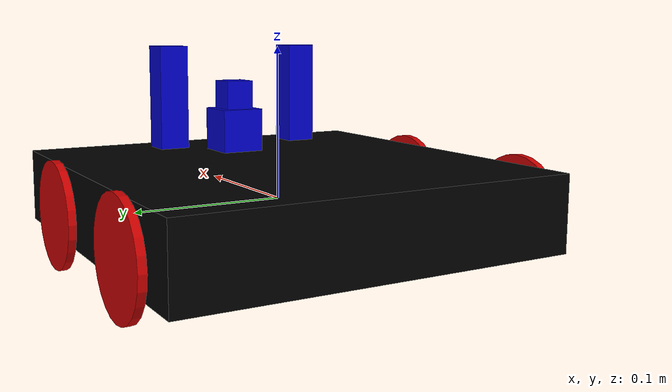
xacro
<?xml version="1.0"?>
<robot xmlns:xacro="http://www.ros.org/wiki/xacro" name="mobile_robot">

  <xacro:property name="base_width" value="0.26"/>
  <xacro:property name="base_len" value="0.26"/>
  <xacro:property name="wheel_radius" value="0.035"/>
  <xacro:property name="base_wheel_gap" value="0.007"/>
  <xacro:property name="wheel_separation" value="0.15"/>
  <xacro:property name="wheel_joint_offset" value="0.04"/>
  <xacro:property name="wheel_joint_offset1" value="-0.08"/>

  <xacro:property name="caster_wheel_radius" value="${wheel_radius/2}"/>
  <xacro:property name="caster_wheel_mass" value="0.001"/>
  <xacro:property name="caster_wheel_joint_offset" value="-0.052"/>

  <xacro:property name="camera_size" value="0.02"/>
  <xacro:property name="camera_origin_x" value="0.065"/>
  <xacro:property name="camera_origin_y" value="0"/>
  <xacro:property name="camera_origin_z" value="0.065"/>

  <!--Color Properties-->
  <material name="blue">
    <color rgba="0 0 0.8 1"/>
  </material>
  <material name="black">
    <color rgba="0 0 0 1"/>
  </material>
  <material name="white">
    <color rgba="1 1 1 1"/>
  </material>
  <material name="red">
    <color rgba="0.8 0.0 0.0 1.0"/>
  </material>

  <!--Interial macros-->
  <xacro:macro name="cylinder_inertia" params="m r h">
    <inertial>
      <mass value="${m}"/>
      <inertia ixx="${m*(3*r*r+h*h)/12}" ixy = "0" ixz = "0" iyy="${m*(3*r*r+h*h)/12}" iyz = "0" izz="${m*r*r/2}"/>
    </inertial>
  </xacro:macro>

  <xacro:macro name="box_inertia" params="m w h d">
    <inertial>
      <mass value="${m}"/>
      <inertia ixx="${m / 12.0 * (d*d + h*h)}" ixy="0.0" ixz="0.0" iyy="${m / 12.0 * (w*w + h*h)}" iyz="0.0" izz="${m / 12.0 * (w*w + d*d)}"/>
    </inertial>
  </xacro:macro>

  <xacro:macro name="sphere_inertia" params="m r">
    <inertial>
      <mass value="${m}"/>
      <inertia ixx="${2.0*m*(r*r)/5.0}" ixy="0.0" ixz="0.0" iyy="${2.0*m*(r*r)/5.0}" iyz="0.0" izz="${2.0*m*(r*r)/5.0}"/>
    </inertial>
  </xacro:macro>

  <xacro:macro name="default_inertial" params="mass">
    <inertial>
      <mass value="${mass}"/>
      <inertia ixx="1.0" ixy="0.0" ixz="0.0" iyy="1.0" iyz="0.0" izz="1.0"/>
    </inertial>
  </xacro:macro>
  <!--Base Footprint-->

  <!--Base link-->
  <link name="base_link">
    <xacro:box_inertia m="10" w="${base_len}" h="${base_width}" d="0.01"/>
    <visual>
      <geometry>
        <box size="${base_len} ${base_width} 0.05"/>
      </geometry>
      <material name="black"/>
    </visual>
    <collision>
      <geometry>
        <box size="${base_len} ${base_width} 0.01"/>
      </geometry>
    </collision>
  </link>

  <!--base_link to base_footprint Joint-->

  <!--Wheel link1 & joint macro-->
  <xacro:macro name="wheel" params="prefix reflect">
    <link name="${prefix}_wheel">
      <visual>
        <origin xyz="0.0 0 0" rpy="${pi/2} 0 0"/>
        <geometry>
          <cylinder radius="${wheel_radius}" length="0.005"/>
        </geometry>
        <material name="red"/>
      </visual>
      <collision>
        <origin xyz="0 0 0" rpy="${pi/2} 0 0"/>
        <geometry>
          <cylinder radius="${wheel_radius}" length="0.005"/>
        </geometry>
      </collision>
      <xacro:cylinder_inertia m="10" r="${wheel_radius}" h="0.005"/>
    </link>

    <joint name="${prefix}_wheel_joint" type="continuous">
      <axis xyz="0 1 0" rpy="0 0 0" />
      <parent link="base_link"/>
      <child link="${prefix}_wheel"/>
      <origin xyz="${wheel_joint_offset} ${((base_width/2)+base_wheel_gap)*reflect} -0.005" rpy="0 0 0"/>
    </joint>
  </xacro:macro>

  <!--Wheel link2 & joint macro-->
  <xacro:macro name="wheel1" params="prefix reflect">
    <link name="${prefix}_wheel">
      <visual>
        <origin xyz="0 0 0" rpy="${pi/2} 0 0"/>
        <geometry>
          <cylinder radius="${wheel_radius}" length="0.005"/>
        </geometry>
        <material name="red"/>
      </visual>
      <collision>
        <origin xyz="0 0 0" rpy="${pi/2} 0 0"/>
        <geometry>
          <cylinder radius="${wheel_radius}" length="0.005"/>
        </geometry>
      </collision>
      <xacro:cylinder_inertia m="10" r="${wheel_radius}" h="0.005"/>
    </link>

    <joint name="${prefix}_wheel_joint" type="continuous">
      <axis xyz="0 1 0" rpy="0 0 0" />
      <parent link="base_link"/>
      <child link="${prefix}_wheel"/>
      <origin xyz="${wheel_joint_offset1} ${((base_width/2)+base_wheel_gap)*reflect} -0.005" rpy="0 0 0"/>
    </joint>
  </xacro:macro>

  <!--Create Left & Right Wheel links/joints-->
  <xacro:wheel prefix="left" reflect="1"/>
  <xacro:wheel prefix="right" reflect="-1"/>

  <xacro:wheel1 prefix="left1" reflect="1"/>
  <xacro:wheel1 prefix="right1" reflect="-1"/>

  <!--Caster Wheel Link-->
  <link name="caster_wheel">
    <visual>
      <origin xyz="0 0 0" rpy="0 0 0"/>
      <geometry>
        <sphere radius="${caster_wheel_radius}"/>
      </geometry>
      <material name="blue"/>
    </visual>
    <collision>
      <origin xyz="0 0 0" rpy="0 0 0"/>
      <geometry>
        <sphere radius="${caster_wheel_radius}"/>
      </geometry>
    </collision>
    <xacro:sphere_inertia m="10" r="${caster_wheel_radius}"/>
  </link>

  <!--Caster Wheel Joint-->
  <joint name="caster_wheel_joint" type="continuous">
    <axis xyz="0 1 0" rpy="0 0 0" />
    <parent link="base_link"/>
    <child link="caster_wheel"/>
    <origin xyz="${caster_wheel_joint_offset} 0 -${caster_wheel_radius+0.005}" rpy="0 0 0"/>
  </joint>

  <xacro:property name="laser_size_x" value="0.03"/>
  <xacro:property name="laser_size_y" value="0.03"/>
  <xacro:property name="laser_size_z" value="0.04"/>
  <xacro:property name="laser_origin_x" value="0.065"/>
  <xacro:property name="laser_origin_y" value="0"/>
  <xacro:property name="laser_origin_z" value="0.035"/>

  <link name="sensor_laser">
    <visual>
      <geometry>
        <box size="${laser_size_x} ${laser_size_y} ${laser_size_z}"/>
      </geometry>
      <material name="blue"/>
    </visual>
    <collision>
      <geometry>
        <box size="${laser_size_x} ${laser_size_y} ${laser_size_z}"/>
      </geometry>
    </collision>
    <xacro:box_inertia m="0.2" w="${laser_size_x}" h="${laser_size_y}" d="${laser_size_z}"/>
  </link>

  <joint name="sensor_laser_joint" type="fixed">
    <origin xyz="${laser_origin_x} ${laser_origin_y} ${laser_origin_z}" rpy="0 0 0" />
    <parent link="base_link"/>
    <child link="sensor_laser" />
  </joint>

    <!--Camera-->
  <link name="camera">
    <visual>
      <geometry>
        <box size="${camera_size} ${camera_size} ${camera_size}"/>
      </geometry>
      <material name="blue"/>
    </visual>
    <collision>
      <geometry>
        <box size="${camera_size} ${camera_size} ${camera_size}"/>
      </geometry>
    </collision>
    <xacro:default_inertial mass="0.02"/>
  </link>

  <joint name="camera_joint" type="fixed">
    <origin xyz="${camera_origin_x} ${camera_origin_y} ${camera_origin_z}" rpy="0 0 0"/>
    <parent link="base_link"/>
    <child link="camera"/>
  </joint>

    <!--Light 1-->
  <link name="light1_link">
    <visual>
      <geometry>
        <box size="${camera_size} ${camera_size} ${camera_size+0.05}"/>
      </geometry>
      <material name="blue"/>
    </visual>
    <collision>
      <geometry>
        <box size="${camera_size} ${camera_size} ${camera_size+0.05}"/>
      </geometry>
    </collision>
    <xacro:default_inertial mass="0.02"/>

  </link>

  <joint name="light1_joint" type="fixed">
    <origin xyz="${camera_origin_x} ${camera_origin_y+0.05} ${camera_origin_z}" rpy="0 0 0"/>
    <parent link="base_link"/>
    <child link="light1_link"/>
  </joint>

    <!--Light 2-->
  <link name="light2_link">
    <visual>
      <geometry>
        <box size="${camera_size} ${camera_size} ${camera_size+0.05}"/>
      </geometry>
      <material name="blue"/>
    </visual>
    <collision>
      <geometry>
        <box size="${camera_size} ${camera_size} ${camera_size+0.05}"/>
      </geometry>
    </collision>
    <xacro:default_inertial mass="0.02"/>

  </link>

  <joint name="light2_joint" type="fixed">
    <origin xyz="${camera_origin_x} ${camera_origin_y-0.05} ${camera_origin_z}" rpy="0 0 1.57"/>
    <parent link="base_link"/>
    <child link="light2_link"/>
  </joint>

  <xacro:include filename="$(find mobile_description)/urdf/mobile_robot_gazebo_plugins.xacro"/>

</robot>
